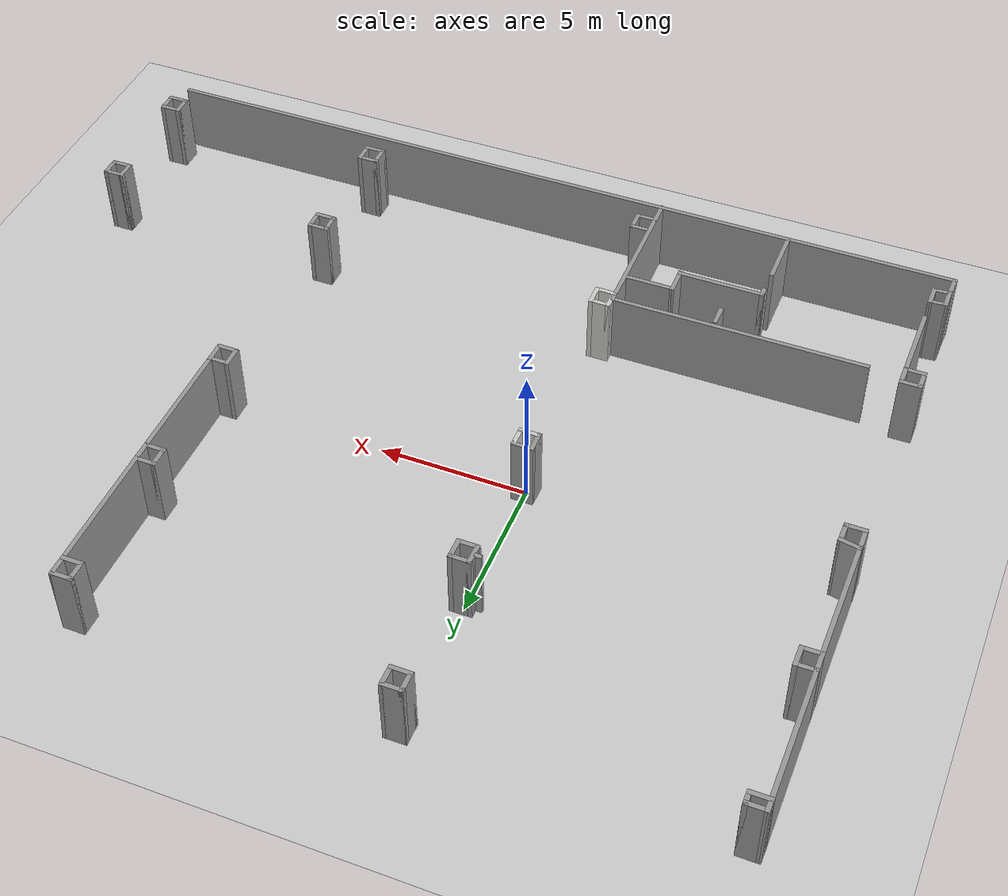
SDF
<sdf version="1.6">
 <world name="default">
  <model name="ground_plane">
   <static>1</static>
   <link name="link">
    <collision name="collision">
     <geometry><plane><normal>0 0 1</normal><size>100 100</size></plane></geometry>
     <surface>
      <contact><collide_bitmask>65535</collide_bitmask></contact>
      <friction><ode><mu>100</mu><mu2>50</mu2></ode></friction>
     </surface>
    </collision>
    <visual name="visual">
     <cast_shadows>0</cast_shadows>
     <geometry><plane><normal>0 0 1</normal><size>100 100</size></plane></geometry>
     <material>
      <script><uri>file://media/materials/scripts/gazebo.material</uri><name>Gazebo/Grey</name></script>
     </material>
    </visual>
   </link>
  </model>
  <model name="Untitled">
   <pose>4.02207 -1.0602 0 0 -0 0</pose>
   <link name="Wall_0">
    <collision name="Wall_0_Collision">
     <geometry><box><size>8.75 0.15 2.5</size></box></geometry>
     <pose>0 0 1.25 0 -0 0</pose>
    </collision>
    <visual name="Wall_0_Visual">
     <pose>0 0 1.25 0 -0 0</pose>
     <geometry><box><size>8.75 0.15 2.5</size></box></geometry>
     <material>
      <script><uri>file://media/materials/scripts/gazebo.material</uri><name>Gazebo/Grey</name></script>
      <ambient>1 1 1 1</ambient>
     </material>
     <meta><layer>0</layer></meta>
    </visual>
    <pose>-8.60497 -5.92583 0 0 -0 0</pose>
   </link>
   <link name="Wall_10">
    <collision name="Wall_10_Collision">
     <geometry><box><size>3 0.15 2.5</size></box></geometry>
     <pose>0 0 1.25 0 -0 0</pose>
    </collision>
    <visual name="Wall_10_Visual">
     <pose>0 0 1.25 0 -0 0</pose>
     <geometry><box><size>3 0.15 2.5</size></box></geometry>
     <material>
      <script><uri>file://media/materials/scripts/gazebo.material</uri><name>Gazebo/Grey</name></script>
      <ambient>1 1 1 1</ambient>
     </material>
     <meta><layer>0</layer></meta>
    </visual>
    <pose>-7.39897 -7.96447 0 0 -0 0</pose>
   </link>
   <link name="Wall_100">
    <collision name="Wall_100_Collision">
     <geometry><box><size>0.75 0.15 2.5</size></box></geometry>
     <pose>0 0 1.25 0 -0 0</pose>
    </collision>
    <visual name="Wall_100_Visual">
     <pose>0 0 1.25 0 -0 0</pose>
     <geometry><box><size>0.75 0.15 2.5</size></box></geometry>
     <material>
      <script><uri>file://media/materials/scripts/gazebo.material</uri><name>Gazebo/Grey</name></script>
      <ambient>1 1 1 1</ambient>
     </material>
     <meta><layer>0</layer></meta>
    </visual>
    <pose>6.05694 1.18506 0 0 -0 -1.5708</pose>
   </link>
   <link name="Wall_101">
    <collision name="Wall_101_Collision">
     <geometry><box><size>0.75 0.15 2.5</size></box></geometry>
     <pose>0 0 1.25 0 -0 0</pose>
    </collision>
    <visual name="Wall_101_Visual">
     <pose>0 0 1.25 0 -0 0</pose>
     <geometry><box><size>0.75 0.15 2.5</size></box></geometry>
     <material>
      <script><uri>file://media/materials/scripts/gazebo.material</uri><name>Gazebo/Grey</name></script>
      <ambient>1 1 1 1</ambient>
     </material>
     <meta><layer>0</layer></meta>
    </visual>
    <pose>6.35695 0.885058 0 0 -0 0</pose>
   </link>
   <link name="Wall_102">
    <collision name="Wall_102_Collision">
     <geometry><box><size>0.75 0.15 2.5</size></box></geometry>
     <pose>0 0 1.25 0 -0 0</pose>
    </collision>
    <visual name="Wall_102_Visual">
     <pose>0 0 1.25 0 -0 0</pose>
     <geometry><box><size>0.75 0.15 2.5</size></box></geometry>
     <material>
      <script><uri>file://media/materials/scripts/gazebo.material</uri><name>Gazebo/Grey</name></script>
      <ambient>1 1 1 1</ambient>
     </material>
     <meta><layer>0</layer></meta>
    </visual>
    <pose>6.65695 1.18506 0 0 -0 1.5708</pose>
   </link>
   <link name="Wall_108">
    <collision name="Wall_108_Collision">
     <geometry><box><size>0.75 0.15 2.5</size></box></geometry>
     <pose>0 0 1.25 0 -0 0</pose>
    </collision>
    <visual name="Wall_108_Visual">
     <pose>0 0 1.25 0 -0 0</pose>
     <geometry><box><size>0.75 0.15 2.5</size></box></geometry>
     <material>
      <script><uri>file://media/materials/scripts/gazebo.material</uri><name>Gazebo/Grey</name></script>
      <ambient>1 1 1 1</ambient>
     </material>
     <meta><layer>0</layer></meta>
    </visual>
    <pose>6.02979 -5.94295 0 0 -0 -1.5708</pose>
   </link>
   <link name="Wall_109">
    <collision name="Wall_109_Collision">
     <geometry><box><size>0.75 0.15 2.5</size></box></geometry>
     <pose>0 0 1.25 0 -0 0</pose>
    </collision>
    <visual name="Wall_109_Visual">
     <pose>0 0 1.25 0 -0 0</pose>
     <geometry><box><size>0.75 0.15 2.5</size></box></geometry>
     <material>
      <script><uri>file://media/materials/scripts/gazebo.material</uri><name>Gazebo/Grey</name></script>
      <ambient>1 1 1 1</ambient>
     </material>
     <meta><layer>0</layer></meta>
    </visual>
    <pose>6.32979 -6.24295 0 0 -0 0</pose>
   </link>
   <link name="Wall_110">
    <collision name="Wall_110_Collision">
     <geometry><box><size>0.75 0.15 2.5</size></box></geometry>
     <pose>0 0 1.25 0 -0 0</pose>
    </collision>
    <visual name="Wall_110_Visual">
     <pose>0 0 1.25 0 -0 0</pose>
     <geometry><box><size>0.75 0.15 2.5</size></box></geometry>
     <material>
      <script><uri>file://media/materials/scripts/gazebo.material</uri><name>Gazebo/Grey</name></script>
      <ambient>1 1 1 1</ambient>
     </material>
     <meta><layer>0</layer></meta>
    </visual>
    <pose>6.62979 -5.94295 0 0 -0 1.5708</pose>
   </link>
   <link name="Wall_111">
    <collision name="Wall_111_Collision">
     <geometry><box><size>0.75 0.15 2.5</size></box></geometry>
     <pose>0 0 1.25 0 -0 0</pose>
    </collision>
    <visual name="Wall_111_Visual">
     <pose>0 0 1.25 0 -0 0</pose>
     <geometry><box><size>0.75 0.15 2.5</size></box></geometry>
     <material>
      <script><uri>file://media/materials/scripts/gazebo.material</uri><name>Gazebo/Grey</name></script>
      <ambient>1 1 1 1</ambient>
     </material>
     <meta><layer>0</layer></meta>
    </visual>
    <pose>6.32979 -5.64295 0 0 -0 3.14159</pose>
   </link>
   <link name="Wall_116">
    <collision name="Wall_116_Collision">
     <geometry><box><size>0.75 0.15 2.5</size></box></geometry>
     <pose>0 0 1.25 0 -0 0</pose>
    </collision>
    <visual name="Wall_116_Visual">
     <pose>0 0 1.25 0 -0 0</pose>
     <geometry><box><size>0.75 0.15 2.5</size></box></geometry>
     <material>
      <script><uri>file://media/materials/scripts/gazebo.material</uri><name>Gazebo/Grey</name></script>
      <ambient>1 1 1 1</ambient>
     </material>
     <meta><layer>0</layer></meta>
    </visual>
    <pose>6.02979 -9.98578 0 0 -0 -1.5708</pose>
   </link>
   <link name="Wall_117">
    <collision name="Wall_117_Collision">
     <geometry><box><size>0.75 0.15 2.5</size></box></geometry>
     <pose>0 0 1.25 0 -0 0</pose>
    </collision>
    <visual name="Wall_117_Visual">
     <pose>0 0 1.25 0 -0 0</pose>
     <geometry><box><size>0.75 0.15 2.5</size></box></geometry>
     <material>
      <script><uri>file://media/materials/scripts/gazebo.material</uri><name>Gazebo/Grey</name></script>
      <ambient>1 1 1 1</ambient>
     </material>
     <meta><layer>0</layer></meta>
    </visual>
    <pose>6.32979 -10.2858 0 0 -0 0</pose>
   </link>
   <link name="Wall_118">
    <collision name="Wall_118_Collision">
     <geometry><box><size>0.75 0.15 2.5</size></box></geometry>
     <pose>0 0 1.25 0 -0 0</pose>
    </collision>
    <visual name="Wall_118_Visual">
     <pose>0 0 1.25 0 -0 0</pose>
     <geometry><box><size>0.75 0.15 2.5</size></box></geometry>
     <material>
      <script><uri>file://media/materials/scripts/gazebo.material</uri><name>Gazebo/Grey</name></script>
      <ambient>1 1 1 1</ambient>
     </material>
     <meta><layer>0</layer></meta>
    </visual>
    <pose>6.62979 -9.98578 0 0 -0 1.5708</pose>
   </link>
   <link name="Wall_119">
    <collision name="Wall_119_Collision">
     <geometry><box><size>0.75 0.15 2.5</size></box></geometry>
     <pose>0 0 1.25 0 -0 0</pose>
    </collision>
    <visual name="Wall_119_Visual">
     <pose>0 0 1.25 0 -0 0</pose>
     <geometry><box><size>0.75 0.15 2.5</size></box></geometry>
     <material>
      <script><uri>file://media/materials/scripts/gazebo.material</uri><name>Gazebo/Grey</name></script>
      <ambient>1 1 1 1</ambient>
     </material>
     <meta><layer>0</layer></meta>
    </visual>
    <pose>6.32979 -9.68578 0 0 -0 3.14159</pose>
   </link>
   <link name="Wall_12">
    <collision name="Wall_12_Collision">
     <geometry><box><size>0.75 0.15 2.5</size></box></geometry>
     <pose>0 0 1.25 0 -0 0</pose>
    </collision>
    <visual name="Wall_12_Visual">
     <pose>0 0 1.25 0 -0 0</pose>
     <geometry><box><size>0.75 0.15 2.5</size></box></geometry>
     <material>
      <script><uri>file://media/materials/scripts/gazebo.material</uri><name>Gazebo/Grey</name></script>
      <ambient>1 1 1 1</ambient>
     </material>
     <meta><layer>0</layer></meta>
    </visual>
    <pose>-7.78656 -6.44086 0 0 -0 1.5708</pose>
   </link>
   <link name="Wall_124">
    <collision name="Wall_124_Collision">
     <geometry><box><size>0.75 0.15 2.5</size></box></geometry>
     <pose>0 0 1.25 0 -0 0</pose>
    </collision>
    <visual name="Wall_124_Visual">
     <pose>0 0 1.25 0 -0 0</pose>
     <geometry><box><size>0.75 0.15 2.5</size></box></geometry>
     <material>
      <script><uri>file://media/materials/scripts/gazebo.material</uri><name>Gazebo/Grey</name></script>
      <ambient>1 1 1 1</ambient>
     </material>
     <meta><layer>0</layer></meta>
    </visual>
    <pose>-4.33544 10.7235 0 0 -0 -1.5708</pose>
   </link>
   <link name="Wall_125">
    <collision name="Wall_125_Collision">
     <geometry><box><size>0.75 0.15 2.5</size></box></geometry>
     <pose>0 0 1.25 0 -0 0</pose>
    </collision>
    <visual name="Wall_125_Visual">
     <pose>0 0 1.25 0 -0 0</pose>
     <geometry><box><size>0.75 0.15 2.5</size></box></geometry>
     <material>
      <script><uri>file://media/materials/scripts/gazebo.material</uri><name>Gazebo/Grey</name></script>
      <ambient>1 1 1 1</ambient>
     </material>
     <meta><layer>0</layer></meta>
    </visual>
    <pose>-4.03544 10.4235 0 0 -0 0</pose>
   </link>
   <link name="Wall_126">
    <collision name="Wall_126_Collision">
     <geometry><box><size>0.75 0.15 2.5</size></box></geometry>
     <pose>0 0 1.25 0 -0 0</pose>
    </collision>
    <visual name="Wall_126_Visual">
     <pose>0 0 1.25 0 -0 0</pose>
     <geometry><box><size>0.75 0.15 2.5</size></box></geometry>
     <material>
      <script><uri>file://media/materials/scripts/gazebo.material</uri><name>Gazebo/Grey</name></script>
      <ambient>1 1 1 1</ambient>
     </material>
     <meta><layer>0</layer></meta>
    </visual>
    <pose>-3.73544 10.7235 0 0 -0 1.5708</pose>
   </link>
   <link name="Wall_127">
    <collision name="Wall_127_Collision">
     <geometry><box><size>0.75 0.15 2.5</size></box></geometry>
     <pose>0 0 1.25 0 -0 0</pose>
    </collision>
    <visual name="Wall_127_Visual">
     <pose>0 0 1.25 0 -0 0</pose>
     <geometry><box><size>0.75 0.15 2.5</size></box></geometry>
     <material>
      <script><uri>file://media/materials/scripts/gazebo.material</uri><name>Gazebo/Grey</name></script>
      <ambient>1 1 1 1</ambient>
     </material>
     <meta><layer>0</layer></meta>
    </visual>
    <pose>-4.03544 11.0235 0 0 -0 3.14159</pose>
   </link>
   <link name="Wall_129">
    <collision name="Wall_129_Collision">
     <geometry><box><size>0.75 0.15 2.5</size></box></geometry>
     <pose>0 0 1.25 0 -0 0</pose>
    </collision>
    <visual name="Wall_129_Visual">
     <pose>0 0 1.25 0 -0 0</pose>
     <geometry><box><size>0.75 0.15 2.5</size></box></geometry>
     <material>
      <script><uri>file://media/materials/scripts/gazebo.material</uri><name>Gazebo/Grey</name></script>
      <ambient>1 1 1 1</ambient>
     </material>
     <meta><layer>0</layer></meta>
    </visual>
    <pose>6.03693 10.6931 0 0 -0 -1.5708</pose>
   </link>
   <link name="Wall_130">
    <collision name="Wall_130_Collision">
     <geometry><box><size>0.75 0.15 2.5</size></box></geometry>
     <pose>0 0 1.25 0 -0 0</pose>
    </collision>
    <visual name="Wall_130_Visual">
     <pose>0 0 1.25 0 -0 0</pose>
     <geometry><box><size>0.75 0.15 2.5</size></box></geometry>
     <material>
      <script><uri>file://media/materials/scripts/gazebo.material</uri><name>Gazebo/Grey</name></script>
      <ambient>1 1 1 1</ambient>
     </material>
     <meta><layer>0</layer></meta>
    </visual>
    <pose>6.33693 10.3931 0 0 -0 0</pose>
   </link>
   <link name="Wall_131">
    <collision name="Wall_131_Collision">
     <geometry><box><size>0.75 0.15 2.5</size></box></geometry>
     <pose>0 0 1.25 0 -0 0</pose>
    </collision>
    <visual name="Wall_131_Visual">
     <pose>0 0 1.25 0 -0 0</pose>
     <geometry><box><size>0.75 0.15 2.5</size></box></geometry>
     <material>
      <script><uri>file://media/materials/scripts/gazebo.material</uri><name>Gazebo/Grey</name></script>
      <ambient>1 1 1 1</ambient>
     </material>
     <meta><layer>0</layer></meta>
    </visual>
    <pose>6.63693 10.6931 0 0 -0 1.5708</pose>
   </link>
   <link name="Wall_132">
    <collision name="Wall_132_Collision">
     <geometry><box><size>0.75 0.15 2.5</size></box></geometry>
     <pose>0 0 1.25 0 -0 0</pose>
    </collision>
    <visual name="Wall_132_Visual">
     <pose>0 0 1.25 0 -0 0</pose>
     <geometry><box><size>0.75 0.15 2.5</size></box></geometry>
     <material>
      <script><uri>file://media/materials/scripts/gazebo.material</uri><name>Gazebo/Grey</name></script>
      <ambient>1 1 1 1</ambient>
     </material>
     <meta><layer>0</layer></meta>
    </visual>
    <pose>6.33693 10.9931 0 0 -0 3.14159</pose>
   </link>
   <link name="Wall_134">
    <collision name="Wall_134_Collision">
     <geometry><box><size>4.35811 0.15 2.5</size></box></geometry>
     <pose>0 0 1.25 0 -0 0</pose>
    </collision>
    <visual name="Wall_134_Visual">
     <pose>0 0 1.25 0 -0 0</pose>
     <geometry><box><size>4.35811 0.15 2.5</size></box></geometry>
     <material>
      <script><uri>file://media/materials/scripts/gazebo.material</uri><name>Gazebo/Grey</name></script>
      <ambient>1 1 1 1</ambient>
     </material>
     <meta><layer>0</layer></meta>
    </visual>
    <pose>6.64694 8.28909 0 0 -0 -1.56604</pose>
   </link>
   <link name="Wall_14">
    <collision name="Wall_14_Collision">
     <geometry><box><size>0.815537 0.15 2.5</size></box></geometry>
     <pose>0 0 1.25 0 -0 0</pose>
    </collision>
    <visual name="Wall_14_Visual">
     <pose>0 0 1.25 0 -0 0</pose>
     <geometry><box><size>0.815537 0.15 2.5</size></box></geometry>
     <material>
      <script><uri>file://media/materials/scripts/gazebo.material</uri><name>Gazebo/Grey</name></script>
      <ambient>1 1 1 1</ambient>
     </material>
     <meta><layer>0</layer></meta>
    </visual>
    <pose>-14.5829 -10.6644 0 0 -0 -1.61078</pose>
   </link>
   <link name="Wall_140">
    <collision name="Wall_140_Collision">
     <geometry><box><size>0.6968 0.15 2.5</size></box></geometry>
     <pose>0 0 1.25 0 -0 0</pose>
    </collision>
    <visual name="Wall_140_Visual">
     <pose>0 0 1.25 0 -0 0</pose>
     <geometry><box><size>0.6968 0.15 2.5</size></box></geometry>
     <material>
      <script><uri>file://media/materials/scripts/gazebo.material</uri><name>Gazebo/Grey</name></script>
      <ambient>1 1 1 1</ambient>
     </material>
     <meta><layer>0</layer></meta>
    </visual>
    <pose>14.0546 -5.90185 0 0 -0 -1.5708</pose>
   </link>
   <link name="Wall_143">
    <collision name="Wall_143_Collision">
     <geometry><box><size>0.75 0.15 2.5</size></box></geometry>
     <pose>0 0 1.25 0 -0 0</pose>
    </collision>
    <visual name="Wall_143_Visual">
     <pose>0 0 1.25 0 -0 0</pose>
     <geometry><box><size>0.75 0.15 2.5</size></box></geometry>
     <material>
      <script><uri>file://media/materials/scripts/gazebo.material</uri><name>Gazebo/Grey</name></script>
      <ambient>1 1 1 1</ambient>
     </material>
     <meta><layer>0</layer></meta>
    </visual>
    <pose>14.3546 -6.17525 0 0 -0 0</pose>
   </link>
   <link name="Wall_144">
    <collision name="Wall_144_Collision">
     <geometry><box><size>0.6968 0.15 2.5</size></box></geometry>
     <pose>0 0 1.25 0 -0 0</pose>
    </collision>
    <visual name="Wall_144_Visual">
     <pose>0 0 1.25 0 -0 0</pose>
     <geometry><box><size>0.6968 0.15 2.5</size></box></geometry>
     <material>
      <script><uri>file://media/materials/scripts/gazebo.material</uri><name>Gazebo/Grey</name></script>
      <ambient>1 1 1 1</ambient>
     </material>
     <meta><layer>0</layer></meta>
    </visual>
    <pose>14.6546 -5.90185 0 0 -0 1.5708</pose>
   </link>
   <link name="Wall_145">
    <collision name="Wall_145_Collision">
     <geometry><box><size>0.75 0.15 2.5</size></box></geometry>
     <pose>0 0 1.25 0 -0 0</pose>
    </collision>
    <visual name="Wall_145_Visual">
     <pose>0 0 1.25 0 -0 0</pose>
     <geometry><box><size>0.75 0.15 2.5</size></box></geometry>
     <material>
      <script><uri>file://media/materials/scripts/gazebo.material</uri><name>Gazebo/Grey</name></script>
      <ambient>1 1 1 1</ambient>
     </material>
     <meta><layer>0</layer></meta>
    </visual>
    <pose>14.3546 -5.62845 0 0 -0 3.14159</pose>
   </link>
   <link name="Wall_154">
    <collision name="Wall_154_Collision">
     <geometry><box><size>0.75 0.15 2.5</size></box></geometry>
     <pose>0 0 1.25 0 -0 0</pose>
    </collision>
    <visual name="Wall_154_Visual">
     <pose>0 0 1.25 0 -0 0</pose>
     <geometry><box><size>0.75 0.15 2.5</size></box></geometry>
     <material>
      <script><uri>file://media/materials/scripts/gazebo.material</uri><name>Gazebo/Grey</name></script>
      <ambient>1 1 1 1</ambient>
     </material>
     <meta><layer>0</layer></meta>
    </visual>
    <pose>14.0691 -10.0298 0 0 -0 -1.5708</pose>
   </link>
   <link name="Wall_155">
    <collision name="Wall_155_Collision">
     <geometry><box><size>0.75 0.15 2.5</size></box></geometry>
     <pose>0 0 1.25 0 -0 0</pose>
    </collision>
    <visual name="Wall_155_Visual">
     <pose>0 0 1.25 0 -0 0</pose>
     <geometry><box><size>0.75 0.15 2.5</size></box></geometry>
     <material>
      <script><uri>file://media/materials/scripts/gazebo.material</uri><name>Gazebo/Grey</name></script>
      <ambient>1 1 1 1</ambient>
     </material>
     <meta><layer>0</layer></meta>
    </visual>
    <pose>14.3691 -10.3298 0 0 -0 0</pose>
   </link>
   <link name="Wall_156">
    <collision name="Wall_156_Collision">
     <geometry><box><size>0.75 0.15 2.5</size></box></geometry>
     <pose>0 0 1.25 0 -0 0</pose>
    </collision>
    <visual name="Wall_156_Visual">
     <pose>0 0 1.25 0 -0 0</pose>
     <geometry><box><size>0.75 0.15 2.5</size></box></geometry>
     <material>
      <script><uri>file://media/materials/scripts/gazebo.material</uri><name>Gazebo/Grey</name></script>
      <ambient>1 1 1 1</ambient>
     </material>
     <meta><layer>0</layer></meta>
    </visual>
    <pose>14.6691 -10.0298 0 0 -0 1.5708</pose>
   </link>
   <link name="Wall_157">
    <collision name="Wall_157_Collision">
     <geometry><box><size>0.75 0.15 2.5</size></box></geometry>
     <pose>0 0 1.25 0 -0 0</pose>
    </collision>
    <visual name="Wall_157_Visual">
     <pose>0 0 1.25 0 -0 0</pose>
     <geometry><box><size>0.75 0.15 2.5</size></box></geometry>
     <material>
      <script><uri>file://media/materials/scripts/gazebo.material</uri><name>Gazebo/Grey</name></script>
      <ambient>1 1 1 1</ambient>
     </material>
     <meta><layer>0</layer></meta>
    </visual>
    <pose>14.3691 -9.72985 0 0 -0 3.14159</pose>
   </link>
   <link name="Wall_16">
    <collision name="Wall_16_Collision">
     <geometry><box><size>2 0.15 2.5</size></box></geometry>
     <pose>0 0 1.25 0 -0 0</pose>
    </collision>
    <visual name="Wall_16_Visual">
     <pose>0 0 1.25 0 -0 0</pose>
     <geometry><box><size>2 0.15 2.5</size></box></geometry>
     <material>
      <script><uri>file://media/materials/scripts/gazebo.material</uri><name>Gazebo/Grey</name></script>
      <ambient>1 1 1 1</ambient>
     </material>
     <meta><layer>0</layer></meta>
    </visual>
    <pose>-8.84658 -9.98672 0 0 -0 -1.5708</pose>
   </link>
   <link name="Wall_18">
    <collision name="Wall_18_Collision">
     <geometry><box><size>0.389402 0.15 2.5</size></box></geometry>
     <pose>0 0 1.25 0 -0 0</pose>
    </collision>
    <visual name="Wall_18_Visual">
     <pose>0 0 1.25 0 -0 0</pose>
     <geometry><box><size>0.389402 0.15 2.5</size></box></geometry>
     <material>
      <script><uri>file://media/materials/scripts/gazebo.material</uri><name>Gazebo/Grey</name></script>
      <ambient>1 1 1 1</ambient>
     </material>
     <meta><layer>0</layer></meta>
    </visual>
    <pose>-8.82397 -8.08417 0 0 -0 1.5708</pose>
   </link>
   <link name="Wall_20">
    <collision name="Wall_20_Collision">
     <geometry><box><size>1 0.15 2.5</size></box></geometry>
     <pose>0 0 1.25 0 -0 0</pose>
    </collision>
    <visual name="Wall_20_Visual">
     <pose>0 0 1.25 0 -0 0</pose>
     <geometry><box><size>1 0.15 2.5</size></box></geometry>
     <material>
      <script><uri>file://media/materials/scripts/gazebo.material</uri><name>Gazebo/Grey</name></script>
      <ambient>1 1 1 1</ambient>
     </material>
     <meta><layer>0</layer></meta>
    </visual>
    <pose>-5.97775 -7.56607 0 0 -0 1.5708</pose>
   </link>
   <link name="Wall_21">
    <collision name="Wall_21_Collision">
     <geometry><box><size>1.75 0.15 2.5</size></box></geometry>
     <pose>0 0 1.25 0 -0 0</pose>
    </collision>
    <visual name="Wall_21_Visual">
     <pose>0 0 1.25 0 -0 0</pose>
     <geometry><box><size>1.75 0.15 2.5</size></box></geometry>
     <material>
      <script><uri>file://media/materials/scripts/gazebo.material</uri><name>Gazebo/Grey</name></script>
      <ambient>1 1 1 1</ambient>
     </material>
     <meta><layer>0</layer></meta>
    </visual>
    <pose>-5.17775 -7.14107 0 0 -0 0</pose>
   </link>
   <link name="Wall_30">
    <collision name="Wall_30_Collision">
     <geometry><box><size>0.75 0.15 2.5</size></box></geometry>
     <pose>0 0 1.25 0 -0 0</pose>
    </collision>
    <visual name="Wall_30_Visual">
     <pose>0 0 1.25 0 -0 0</pose>
     <geometry><box><size>0.75 0.15 2.5</size></box></geometry>
     <material>
      <script><uri>file://media/materials/scripts/gazebo.material</uri><name>Gazebo/Grey</name></script>
      <ambient>1 1 1 1</ambient>
     </material>
     <meta><layer>0</layer></meta>
    </visual>
    <pose>-14.3691 -5.65192 0 0 -0 3.14159</pose>
   </link>
   <link name="Wall_31">
    <collision name="Wall_31_Collision">
     <geometry><box><size>0.75 0.15 2.5</size></box></geometry>
     <pose>0 0 1.25 0 -0 0</pose>
    </collision>
    <visual name="Wall_31_Visual">
     <pose>0 0 1.25 0 -0 0</pose>
     <geometry><box><size>0.75 0.15 2.5</size></box></geometry>
     <material>
      <script><uri>file://media/materials/scripts/gazebo.material</uri><name>Gazebo/Grey</name></script>
      <ambient>1 1 1 1</ambient>
     </material>
     <meta><layer>0</layer></meta>
    </visual>
    <pose>-14.6691 -5.95192 0 0 -0 -1.5708</pose>
   </link>
   <link name="Wall_32">
    <collision name="Wall_32_Collision">
     <geometry><box><size>0.75 0.15 2.5</size></box></geometry>
     <pose>0 0 1.25 0 -0 0</pose>
    </collision>
    <visual name="Wall_32_Visual">
     <pose>0 0 1.25 0 -0 0</pose>
     <geometry><box><size>0.75 0.15 2.5</size></box></geometry>
     <material>
      <script><uri>file://media/materials/scripts/gazebo.material</uri><name>Gazebo/Grey</name></script>
      <ambient>1 1 1 1</ambient>
     </material>
     <meta><layer>0</layer></meta>
    </visual>
    <pose>-14.3691 -6.25192 0 0 -0 0</pose>
   </link>
   <link name="Wall_33">
    <collision name="Wall_33_Collision">
     <geometry><box><size>0.75 0.15 2.5</size></box></geometry>
     <pose>0 0 1.25 0 -0 0</pose>
    </collision>
    <visual name="Wall_33_Visual">
     <pose>0 0 1.25 0 -0 0</pose>
     <geometry><box><size>0.75 0.15 2.5</size></box></geometry>
     <material>
      <script><uri>file://media/materials/scripts/gazebo.material</uri><name>Gazebo/Grey</name></script>
      <ambient>1 1 1 1</ambient>
     </material>
     <meta><layer>0</layer></meta>
    </visual>
    <pose>-14.0691 -5.95192 0 0 -0 1.5708</pose>
   </link>
   <link name="Wall_35">
    <collision name="Wall_35_Collision">
     <geometry><box><size>2.75 0.15 2.5</size></box></geometry>
     <pose>0 0 1.25 0 -0 0</pose>
    </collision>
    <visual name="Wall_35_Visual">
     <pose>0 0 1.25 0 -0 0</pose>
     <geometry><box><size>2.75 0.15 2.5</size></box></geometry>
     <material>
      <script><uri>file://media/materials/scripts/gazebo.material</uri><name>Gazebo/Grey</name></script>
      <ambient>1 1 1 1</ambient>
     </material>
     <meta><layer>0</layer></meta>
    </visual>
    <pose>-14.0691 -7.55192 0 0 -0 -1.5708</pose>
   </link>
   <link name="Wall_37">
    <collision name="Wall_37_Collision">
     <geometry><box><size>0.75 0.15 2.5</size></box></geometry>
     <pose>0 0 1.25 0 -0 0</pose>
    </collision>
    <visual name="Wall_37_Visual">
     <pose>0 0 1.25 0 -0 0</pose>
     <geometry><box><size>0.75 0.15 2.5</size></box></geometry>
     <material>
      <script><uri>file://media/materials/scripts/gazebo.material</uri><name>Gazebo/Grey</name></script>
      <ambient>1 1 1 1</ambient>
     </material>
     <meta><layer>0</layer></meta>
    </visual>
    <pose>-14.0589 -9.99265 0 0 -0 -1.5708</pose>
   </link>
   <link name="Wall_38">
    <collision name="Wall_38_Collision">
     <geometry><box><size>0.662197 0.15 2.5</size></box></geometry>
     <pose>0 0 1.25 0 -0 0</pose>
    </collision>
    <visual name="Wall_38_Visual">
     <pose>0 0 1.25 0 -0 0</pose>
     <geometry><box><size>0.662197 0.15 2.5</size></box></geometry>
     <material>
      <script><uri>file://media/materials/scripts/gazebo.material</uri><name>Gazebo/Grey</name></script>
      <ambient>1 1 1 1</ambient>
     </material>
     <meta><layer>0</layer></meta>
    </visual>
    <pose>-14.3143 -10.3123 0 0 -0 -3.06492</pose>
   </link>
   <link name="Wall_39">
    <collision name="Wall_39_Collision">
     <geometry><box><size>0.75 0.15 2.5</size></box></geometry>
     <pose>0 0 1.25 0 -0 0</pose>
    </collision>
    <visual name="Wall_39_Visual">
     <pose>0 0 1.25 0 -0 0</pose>
     <geometry><box><size>0.75 0.15 2.5</size></box></geometry>
     <material>
      <script><uri>file://media/materials/scripts/gazebo.material</uri><name>Gazebo/Grey</name></script>
      <ambient>1 1 1 1</ambient>
     </material>
     <meta><layer>0</layer></meta>
    </visual>
    <pose>-14.5696 -10.0319 0 0 -0 1.5708</pose>
   </link>
   <link name="Wall_40">
    <collision name="Wall_40_Collision">
     <geometry><box><size>0.662197 0.15 2.5</size></box></geometry>
     <pose>0 0 1.25 0 -0 0</pose>
    </collision>
    <visual name="Wall_40_Visual">
     <pose>0 0 1.25 0 -0 0</pose>
     <geometry><box><size>0.662197 0.15 2.5</size></box></geometry>
     <material>
      <script><uri>file://media/materials/scripts/gazebo.material</uri><name>Gazebo/Grey</name></script>
      <ambient>1 1 1 1</ambient>
     </material>
     <meta><layer>0</layer></meta>
    </visual>
    <pose>-14.3143 -9.71227 0 0 -0 0.076675</pose>
   </link>
   <link name="Wall_42">
    <collision name="Wall_42_Collision">
     <geometry><box><size>0.75 0.15 2.5</size></box></geometry>
     <pose>0 0 1.25 0 -0 0</pose>
    </collision>
    <visual name="Wall_42_Visual">
     <pose>0 0 1.25 0 -0 0</pose>
     <geometry><box><size>0.75 0.15 2.5</size></box></geometry>
     <material>
      <script><uri>file://media/materials/scripts/gazebo.material</uri><name>Gazebo/CeilingTiled</name></script>
      <ambient>1 1 1 1</ambient>
     </material>
     <meta><layer>0</layer></meta>
    </visual>
    <pose>-4.27105 -5.89885 0 0 -0 -1.5708</pose>
   </link>
   <link name="Wall_43">
    <collision name="Wall_43_Collision">
     <geometry><box><size>0.75 0.15 2.5</size></box></geometry>
     <pose>0 0 1.25 0 -0 0</pose>
    </collision>
    <visual name="Wall_43_Visual">
     <pose>0 0 1.25 0 -0 0</pose>
     <geometry><box><size>0.75 0.15 2.5</size></box></geometry>
     <material>
      <script><uri>file://media/materials/scripts/gazebo.material</uri><name>Gazebo/CeilingTiled</name></script>
      <ambient>1 1 1 1</ambient>
     </material>
     <meta><layer>0</layer></meta>
    </visual>
    <pose>-3.97105 -6.19885 0 0 -0 0</pose>
   </link>
   <link name="Wall_44">
    <collision name="Wall_44_Collision">
     <geometry><box><size>0.75 0.15 2.5</size></box></geometry>
     <pose>0 0 1.25 0 -0 0</pose>
    </collision>
    <visual name="Wall_44_Visual">
     <pose>0 0 1.25 0 -0 0</pose>
     <geometry><box><size>0.75 0.15 2.5</size></box></geometry>
     <material>
      <script><uri>file://media/materials/scripts/gazebo.material</uri><name>Gazebo/CeilingTiled</name></script>
      <ambient>1 1 1 1</ambient>
     </material>
     <meta><layer>0</layer></meta>
    </visual>
    <pose>-3.67105 -5.89885 0 0 -0 1.5708</pose>
   </link>
   <link name="Wall_45">
    <collision name="Wall_45_Collision">
     <geometry><box><size>0.75 0.15 2.5</size></box></geometry>
     <pose>0 0 1.25 0 -0 0</pose>
    </collision>
    <visual name="Wall_45_Visual">
     <pose>0 0 1.25 0 -0 0</pose>
     <geometry><box><size>0.75 0.15 2.5</size></box></geometry>
     <material>
      <script><uri>file://media/materials/scripts/gazebo.material</uri><name>Gazebo/CeilingTiled</name></script>
      <ambient>1 1 1 1</ambient>
     </material>
     <meta><layer>0</layer></meta>
    </visual>
    <pose>-3.97105 -5.59885 0 0 -0 3.14159</pose>
   </link>
   <link name="Wall_47">
    <collision name="Wall_47_Collision">
     <geometry><box><size>0.75 0.15 2.5</size></box></geometry>
     <pose>0 0 1.25 0 -0 0</pose>
    </collision>
    <visual name="Wall_47_Visual">
     <pose>0 0 1.25 0 -0 0</pose>
     <geometry><box><size>0.75 0.15 2.5</size></box></geometry>
     <material>
      <script><uri>file://media/materials/scripts/gazebo.material</uri><name>Gazebo/Grey</name></script>
      <ambient>1 1 1 1</ambient>
     </material>
     <meta><layer>0</layer></meta>
    </visual>
    <pose>-3.9856 -9.69325 0 0 -0 0</pose>
   </link>
   <link name="Wall_48">
    <collision name="Wall_48_Collision">
     <geometry><box><size>0.75 0.15 2.5</size></box></geometry>
     <pose>0 0 1.25 0 -0 0</pose>
    </collision>
    <visual name="Wall_48_Visual">
     <pose>0 0 1.25 0 -0 0</pose>
     <geometry><box><size>0.75 0.15 2.5</size></box></geometry>
     <material>
      <script><uri>file://media/materials/scripts/gazebo.material</uri><name>Gazebo/Grey</name></script>
      <ambient>1 1 1 1</ambient>
     </material>
     <meta><layer>0</layer></meta>
    </visual>
    <pose>-3.6856 -9.99325 0 0 -0 -1.5708</pose>
   </link>
   <link name="Wall_49">
    <collision name="Wall_49_Collision">
     <geometry><box><size>0.75 0.15 2.5</size></box></geometry>
     <pose>0 0 1.25 0 -0 0</pose>
    </collision>
    <visual name="Wall_49_Visual">
     <pose>0 0 1.25 0 -0 0</pose>
     <geometry><box><size>0.75 0.15 2.5</size></box></geometry>
     <material>
      <script><uri>file://media/materials/scripts/gazebo.material</uri><name>Gazebo/Grey</name></script>
      <ambient>1 1 1 1</ambient>
     </material>
     <meta><layer>0</layer></meta>
    </visual>
    <pose>-3.9856 -10.2933 0 0 -0 3.14159</pose>
   </link>
   <link name="Wall_51">
    <collision name="Wall_51_Collision">
     <geometry><box><size>0.75 0.15 2.5</size></box></geometry>
     <pose>0 0 1.25 0 -0 0</pose>
    </collision>
    <visual name="Wall_51_Visual">
     <pose>0 0 1.25 0 -0 0</pose>
     <geometry><box><size>0.75 0.15 2.5</size></box></geometry>
     <material>
      <script><uri>file://media/materials/scripts/gazebo.material</uri><name>Gazebo/Grey</name></script>
      <ambient>1 1 1 1</ambient>
     </material>
     <meta><layer>0</layer></meta>
    </visual>
    <pose>-14.2804 0.814265 0 0 -0 0</pose>
   </link>
   <link name="Wall_52">
    <collision name="Wall_52_Collision">
     <geometry><box><size>0.75 0.15 2.5</size></box></geometry>
     <pose>0 0 1.25 0 -0 0</pose>
    </collision>
    <visual name="Wall_52_Visual">
     <pose>0 0 1.25 0 -0 0</pose>
     <geometry><box><size>0.75 0.15 2.5</size></box></geometry>
     <material>
      <script><uri>file://media/materials/scripts/gazebo.material</uri><name>Gazebo/Grey</name></script>
      <ambient>1 1 1 1</ambient>
     </material>
     <meta><layer>0</layer></meta>
    </visual>
    <pose>-13.9804 1.11427 0 0 -0 1.5708</pose>
   </link>
   <link name="Wall_53">
    <collision name="Wall_53_Collision">
     <geometry><box><size>0.7608 0.15 2.5</size></box></geometry>
     <pose>0 0 1.25 0 -0 0</pose>
    </collision>
    <visual name="Wall_53_Visual">
     <pose>0 0 1.25 0 -0 0</pose>
     <geometry><box><size>0.7608 0.15 2.5</size></box></geometry>
     <material>
      <script><uri>file://media/materials/scripts/gazebo.material</uri><name>Gazebo/Grey</name></script>
      <ambient>1 1 1 1</ambient>
     </material>
     <meta><layer>0</layer></meta>
    </visual>
    <pose>-14.2804 1.47144 0 0 -0 2.95327</pose>
   </link>
   <link name="Wall_54">
    <collision name="Wall_54_Collision">
     <geometry><box><size>0.864351 0.15 2.5</size></box></geometry>
     <pose>0 0 1.25 0 -0 0</pose>
    </collision>
    <visual name="Wall_54_Visual">
     <pose>0 0 1.25 0 -0 0</pose>
     <geometry><box><size>0.864351 0.15 2.5</size></box></geometry>
     <material>
      <script><uri>file://media/materials/scripts/gazebo.material</uri><name>Gazebo/Grey</name></script>
      <ambient>1 1 1 1</ambient>
     </material>
     <meta><layer>0</layer></meta>
    </visual>
    <pose>-14.5804 1.17144 0 0 -0 -1.5708</pose>
   </link>
   <link name="Wall_56">
    <collision name="Wall_56_Collision">
     <geometry><box><size>4.25 0.15 2.5</size></box></geometry>
     <pose>0 0 1.25 0 -0 0</pose>
    </collision>
    <visual name="Wall_56_Visual">
     <pose>0 0 1.25 0 -0 0</pose>
     <geometry><box><size>4.25 0.15 2.5</size></box></geometry>
     <material>
      <script><uri>file://media/materials/scripts/gazebo.material</uri><name>Gazebo/Grey</name></script>
      <ambient>1 1 1 1</ambient>
     </material>
     <meta><layer>0</layer></meta>
    </visual>
    <pose>-14.5804 3.56718 0 0 -0 1.5708</pose>
   </link>
   <link name="Wall_6">
    <collision name="Wall_6_Collision">
     <geometry><box><size>29 0.15 2.5</size></box></geometry>
     <pose>0 0 1.25 0 -0 0</pose>
    </collision>
    <visual name="Wall_6_Visual">
     <pose>0 0 1.25 0 -0 0</pose>
     <geometry><box><size>29 0.15 2.5</size></box></geometry>
     <material>
      <script><uri>file://media/materials/scripts/gazebo.material</uri><name>Gazebo/Grey</name></script>
      <ambient>1 1 1 1</ambient>
     </material>
     <meta><layer>0</layer></meta>
    </visual>
    <pose>-0.171213 -10.9969 0 0 -0 0</pose>
   </link>
   <link name="Wall_60">
    <collision name="Wall_60_Collision">
     <geometry><box><size>0.75 0.15 2.5</size></box></geometry>
     <pose>0 0 1.25 0 -0 0</pose>
    </collision>
    <visual name="Wall_60_Visual">
     <pose>0 0 1.25 0 -0 0</pose>
     <geometry><box><size>0.75 0.15 2.5</size></box></geometry>
     <material>
      <script><uri>file://media/materials/scripts/gazebo.material</uri><name>Gazebo/Grey</name></script>
      <ambient>1 1 1 1</ambient>
     </material>
     <meta><layer>0</layer></meta>
    </visual>
    <pose>-14.2804 5.61718 0 0 -0 0</pose>
   </link>
   <link name="Wall_61">
    <collision name="Wall_61_Collision">
     <geometry><box><size>0.75 0.15 2.5</size></box></geometry>
     <pose>0 0 1.25 0 -0 0</pose>
    </collision>
    <visual name="Wall_61_Visual">
     <pose>0 0 1.25 0 -0 0</pose>
     <geometry><box><size>0.75 0.15 2.5</size></box></geometry>
     <material>
      <script><uri>file://media/materials/scripts/gazebo.material</uri><name>Gazebo/Grey</name></script>
      <ambient>1 1 1 1</ambient>
     </material>
     <meta><layer>0</layer></meta>
    </visual>
    <pose>-13.9804 5.91718 0 0 -0 1.5708</pose>
   </link>
   <link name="Wall_62">
    <collision name="Wall_62_Collision">
     <geometry><box><size>0.75 0.15 2.5</size></box></geometry>
     <pose>0 0 1.25 0 -0 0</pose>
    </collision>
    <visual name="Wall_62_Visual">
     <pose>0 0 1.25 0 -0 0</pose>
     <geometry><box><size>0.75 0.15 2.5</size></box></geometry>
     <material>
      <script><uri>file://media/materials/scripts/gazebo.material</uri><name>Gazebo/Grey</name></script>
      <ambient>1 1 1 1</ambient>
     </material>
     <meta><layer>0</layer></meta>
    </visual>
    <pose>-14.2804 6.21718 0 0 -0 3.14159</pose>
   </link>
   <link name="Wall_63">
    <collision name="Wall_63_Collision">
     <geometry><box><size>0.75 0.15 2.5</size></box></geometry>
     <pose>0 0 1.25 0 -0 0</pose>
    </collision>
    <visual name="Wall_63_Visual">
     <pose>0 0 1.25 0 -0 0</pose>
     <geometry><box><size>0.75 0.15 2.5</size></box></geometry>
     <material>
      <script><uri>file://media/materials/scripts/gazebo.material</uri><name>Gazebo/Grey</name></script>
      <ambient>1 1 1 1</ambient>
     </material>
     <meta><layer>0</layer></meta>
    </visual>
    <pose>-14.5804 5.91718 0 0 -0 -1.5708</pose>
   </link>
   <link name="Wall_65">
    <collision name="Wall_65_Collision">
     <geometry><box><size>4.89778 0.15 2.5</size></box></geometry>
     <pose>0 0 1.25 0 -0 0</pose>
    </collision>
    <visual name="Wall_65_Visual">
     <pose>0 0 1.25 0 -0 0</pose>
     <geometry><box><size>4.89778 0.15 2.5</size></box></geometry>
     <material>
      <script><uri>file://media/materials/scripts/gazebo.material</uri><name>Gazebo/Grey</name></script>
      <ambient>1 1 1 1</ambient>
     </material>
     <meta><layer>0</layer></meta>
    </visual>
    <pose>-14.5886 8.59106 0 0 -0 -1.56735</pose>
   </link>
   <link name="Wall_69">
    <collision name="Wall_69_Collision">
     <geometry><box><size>0.75 0.15 2.5</size></box></geometry>
     <pose>0 0 1.25 0 -0 0</pose>
    </collision>
    <visual name="Wall_69_Visual">
     <pose>0 0 1.25 0 -0 0</pose>
     <geometry><box><size>0.75 0.15 2.5</size></box></geometry>
     <material>
      <script><uri>file://media/materials/scripts/gazebo.material</uri><name>Gazebo/Grey</name></script>
      <ambient>1 1 1 1</ambient>
     </material>
     <meta><layer>0</layer></meta>
    </visual>
    <pose>-14.2968 10.9649 0 0 -0 0</pose>
   </link>
   <link name="Wall_72">
    <collision name="Wall_72_Collision">
     <geometry><box><size>0.5 0.15 2.5</size></box></geometry>
     <pose>0 0 1.25 0 -0 0</pose>
    </collision>
    <visual name="Wall_72_Visual">
     <pose>0 0 1.25 0 -0 0</pose>
     <geometry><box><size>0.5 0.15 2.5</size></box></geometry>
     <material>
      <script><uri>file://media/materials/scripts/gazebo.material</uri><name>Gazebo/Grey</name></script>
      <ambient>1 1 1 1</ambient>
     </material>
     <meta><layer>0</layer></meta>
    </visual>
    <pose>-13.9968 10.7899 0 0 -0 -1.5708</pose>
   </link>
   <link name="Wall_73">
    <collision name="Wall_73_Collision">
     <geometry><box><size>0.75 0.15 2.5</size></box></geometry>
     <pose>0 0 1.25 0 -0 0</pose>
    </collision>
    <visual name="Wall_73_Visual">
     <pose>0 0 1.25 0 -0 0</pose>
     <geometry><box><size>0.75 0.15 2.5</size></box></geometry>
     <material>
      <script><uri>file://media/materials/scripts/gazebo.material</uri><name>Gazebo/Grey</name></script>
      <ambient>1 1 1 1</ambient>
     </material>
     <meta><layer>0</layer></meta>
    </visual>
    <pose>-14.2968 10.6149 0 0 -0 3.14159</pose>
   </link>
   <link name="Wall_78">
    <collision name="Wall_78_Collision">
     <geometry><box><size>0.25 0.15 2.5</size></box></geometry>
     <pose>0 0 1.25 0 -0 0</pose>
    </collision>
    <visual name="Wall_78_Visual">
     <pose>0 0 1.25 0 -0 0</pose>
     <geometry><box><size>0.25 0.15 2.5</size></box></geometry>
     <material>
      <script><uri>file://media/materials/scripts/gazebo.material</uri><name>Gazebo/Grey</name></script>
      <ambient>1 1 1 1</ambient>
     </material>
     <meta><layer>0</layer></meta>
    </visual>
    <pose>-4.43199 5.90069 0 0 -0 0</pose>
   </link>
   <link name="Wall_8">
    <collision name="Wall_8_Collision">
     <geometry><box><size>5.24766 0.15 2.5</size></box></geometry>
     <pose>0 0 1.25 0 -0 0</pose>
    </collision>
    <visual name="Wall_8_Visual">
     <pose>0 0 1.25 0 -0 0</pose>
     <geometry><box><size>5.24766 0.15 2.5</size></box></geometry>
     <material>
      <script><uri>file://media/materials/scripts/gazebo.material</uri><name>Gazebo/Grey</name></script>
      <ambient>1 1 1 1</ambient>
     </material>
     <meta><layer>0</layer></meta>
    </visual>
    <pose>-4.30345 -8.47466 0 0 -0 1.57139</pose>
   </link>
   <link name="Wall_80">
    <collision name="Wall_80_Collision">
     <geometry><box><size>0.75 0.15 2.5</size></box></geometry>
     <pose>0 0 1.25 0 -0 0</pose>
    </collision>
    <visual name="Wall_80_Visual">
     <pose>0 0 1.25 0 -0 0</pose>
     <geometry><box><size>0.75 0.15 2.5</size></box></geometry>
     <material>
      <script><uri>file://media/materials/scripts/gazebo.material</uri><name>Gazebo/Grey</name></script>
      <ambient>1 1 1 1</ambient>
     </material>
     <meta><layer>0</layer></meta>
    </visual>
    <pose>-4.285 5.88506 0 0 -0 -1.5708</pose>
   </link>
   <link name="Wall_81">
    <collision name="Wall_81_Collision">
     <geometry><box><size>0.75 0.15 2.5</size></box></geometry>
     <pose>0 0 1.25 0 -0 0</pose>
    </collision>
    <visual name="Wall_81_Visual">
     <pose>0 0 1.25 0 -0 0</pose>
     <geometry><box><size>0.75 0.15 2.5</size></box></geometry>
     <material>
      <script><uri>file://media/materials/scripts/gazebo.material</uri><name>Gazebo/Grey</name></script>
      <ambient>1 1 1 1</ambient>
     </material>
     <meta><layer>0</layer></meta>
    </visual>
    <pose>-3.98501 5.58506 0 0 -0 0</pose>
   </link>
   <link name="Wall_82">
    <collision name="Wall_82_Collision">
     <geometry><box><size>0.75 0.15 2.5</size></box></geometry>
     <pose>0 0 1.25 0 -0 0</pose>
    </collision>
    <visual name="Wall_82_Visual">
     <pose>0 0 1.25 0 -0 0</pose>
     <geometry><box><size>0.75 0.15 2.5</size></box></geometry>
     <material>
      <script><uri>file://media/materials/scripts/gazebo.material</uri><name>Gazebo/Grey</name></script>
      <ambient>1 1 1 1</ambient>
     </material>
     <meta><layer>0</layer></meta>
    </visual>
    <pose>-3.685 5.88506 0 0 -0 1.5708</pose>
   </link>
   <link name="Wall_83">
    <collision name="Wall_83_Collision">
     <geometry><box><size>0.75 0.15 2.5</size></box></geometry>
     <pose>0 0 1.25 0 -0 0</pose>
    </collision>
    <visual name="Wall_83_Visual">
     <pose>0 0 1.25 0 -0 0</pose>
     <geometry><box><size>0.75 0.15 2.5</size></box></geometry>
     <material>
      <script><uri>file://media/materials/scripts/gazebo.material</uri><name>Gazebo/Grey</name></script>
      <ambient>1 1 1 1</ambient>
     </material>
     <meta><layer>0</layer></meta>
    </visual>
    <pose>-3.98501 6.18506 0 0 -0 3.14159</pose>
   </link>
   <link name="Wall_85">
    <collision name="Wall_85_Collision">
     <geometry><box><size>0.75 0.15 2.5</size></box></geometry>
     <pose>0 0 1.25 0 -0 0</pose>
    </collision>
    <visual name="Wall_85_Visual">
     <pose>0 0 1.25 0 -0 0</pose>
     <geometry><box><size>0.75 0.15 2.5</size></box></geometry>
     <material>
      <script><uri>file://media/materials/scripts/gazebo.material</uri><name>Gazebo/Grey</name></script>
      <ambient>1 1 1 1</ambient>
     </material>
     <meta><layer>0</layer></meta>
    </visual>
    <pose>-4.31542 1.06388 0 0 -0 -1.5708</pose>
   </link>
   <link name="Wall_86">
    <collision name="Wall_86_Collision">
     <geometry><box><size>0.75 0.15 2.5</size></box></geometry>
     <pose>0 0 1.25 0 -0 0</pose>
    </collision>
    <visual name="Wall_86_Visual">
     <pose>0 0 1.25 0 -0 0</pose>
     <geometry><box><size>0.75 0.15 2.5</size></box></geometry>
     <material>
      <script><uri>file://media/materials/scripts/gazebo.material</uri><name>Gazebo/CeilingTiled</name></script>
      <ambient>1 1 1 1</ambient>
     </material>
     <meta><layer>0</layer></meta>
    </visual>
    <pose>-4.01542 0.763885 0 0 -0 0</pose>
   </link>
   <link name="Wall_87">
    <collision name="Wall_87_Collision">
     <geometry><box><size>0.75 0.15 2.5</size></box></geometry>
     <pose>0 0 1.25 0 -0 0</pose>
    </collision>
    <visual name="Wall_87_Visual">
     <pose>0 0 1.25 0 -0 0</pose>
     <geometry><box><size>0.75 0.15 2.5</size></box></geometry>
     <material>
      <script><uri>file://media/materials/scripts/gazebo.material</uri><name>Gazebo/CeilingTiled</name></script>
      <ambient>1 1 1 1</ambient>
     </material>
     <meta><layer>0</layer></meta>
    </visual>
    <pose>-3.71542 1.06388 0 0 -0 1.5708</pose>
   </link>
   <link name="Wall_88">
    <collision name="Wall_88_Collision">
     <geometry><box><size>0.75 0.15 2.5</size></box></geometry>
     <pose>0 0 1.25 0 -0 0</pose>
    </collision>
    <visual name="Wall_88_Visual">
     <pose>0 0 1.25 0 -0 0</pose>
     <geometry><box><size>0.75 0.15 2.5</size></box></geometry>
     <material>
      <script><uri>file://media/materials/scripts/gazebo.material</uri><name>Gazebo/Grey</name></script>
      <ambient>1 1 1 1</ambient>
     </material>
     <meta><layer>0</layer></meta>
    </visual>
    <pose>-4.01542 1.36389 0 0 -0 3.14159</pose>
   </link>
   <link name="Wall_92">
    <collision name="Wall_92_Collision">
     <geometry><box><size>0.75 0.15 2.5</size></box></geometry>
     <pose>0 0 1.25 0 -0 0</pose>
    </collision>
    <visual name="Wall_92_Visual">
     <pose>0 0 1.25 0 -0 0</pose>
     <geometry><box><size>0.75 0.15 2.5</size></box></geometry>
     <material>
      <script><uri>file://media/materials/scripts/gazebo.material</uri><name>Gazebo/Grey</name></script>
      <ambient>1 1 1 1</ambient>
     </material>
     <meta><layer>0</layer></meta>
    </visual>
    <pose>6.05694 5.88506 0 0 -0 -1.5708</pose>
   </link>
   <link name="Wall_93">
    <collision name="Wall_93_Collision">
     <geometry><box><size>0.75 0.15 2.5</size></box></geometry>
     <pose>0 0 1.25 0 -0 0</pose>
    </collision>
    <visual name="Wall_93_Visual">
     <pose>0 0 1.25 0 -0 0</pose>
     <geometry><box><size>0.75 0.15 2.5</size></box></geometry>
     <material>
      <script><uri>file://media/materials/scripts/gazebo.material</uri><name>Gazebo/Grey</name></script>
      <ambient>1 1 1 1</ambient>
     </material>
     <meta><layer>0</layer></meta>
    </visual>
    <pose>6.35695 5.58506 0 0 -0 0</pose>
   </link>
   <link name="Wall_94">
    <collision name="Wall_94_Collision">
     <geometry><box><size>0.75 0.15 2.5</size></box></geometry>
     <pose>0 0 1.25 0 -0 0</pose>
    </collision>
    <visual name="Wall_94_Visual">
     <pose>0 0 1.25 0 -0 0</pose>
     <geometry><box><size>0.75 0.15 2.5</size></box></geometry>
     <material>
      <script><uri>file://media/materials/scripts/gazebo.material</uri><name>Gazebo/Grey</name></script>
      <ambient>1 1 1 1</ambient>
     </material>
     <meta><layer>0</layer></meta>
    </visual>
    <pose>6.65695 5.88506 0 0 -0 1.5708</pose>
   </link>
   <link name="Wall_95">
    <collision name="Wall_95_Collision">
     <geometry><box><size>0.75 0.15 2.5</size></box></geometry>
     <pose>0 0 1.25 0 -0 0</pose>
    </collision>
    <visual name="Wall_95_Visual">
     <pose>0 0 1.25 0 -0 0</pose>
     <geometry><box><size>0.75 0.15 2.5</size></box></geometry>
     <material>
      <script><uri>file://media/materials/scripts/gazebo.material</uri><name>Gazebo/Grey</name></script>
      <ambient>1 1 1 1</ambient>
     </material>
     <meta><layer>0</layer></meta>
    </visual>
    <pose>6.35695 6.18506 0 0 -0 3.14159</pose>
   </link>
   <link name="Wall_97">
    <collision name="Wall_97_Collision">
     <geometry><box><size>4.25 0.15 2.5</size></box></geometry>
     <pose>0 0 1.25 0 -0 0</pose>
    </collision>
    <visual name="Wall_97_Visual">
     <pose>0 0 1.25 0 -0 0</pose>
     <geometry><box><size>4.25 0.15 2.5</size></box></geometry>
     <material>
      <script><uri>file://media/materials/scripts/gazebo.material</uri><name>Gazebo/Grey</name></script>
      <ambient>1 1 1 1</ambient>
     </material>
     <meta><layer>0</layer></meta>
    </visual>
    <pose>6.65695 3.53506 0 0 -0 -1.5708</pose>
   </link>
   <link name="Wall_99">
    <collision name="Wall_99_Collision">
     <geometry><box><size>0.75 0.15 2.5</size></box></geometry>
     <pose>0 0 1.25 0 -0 0</pose>
    </collision>
    <visual name="Wall_99_Visual">
     <pose>0 0 1.25 0 -0 0</pose>
     <geometry><box><size>0.75 0.15 2.5</size></box></geometry>
     <material>
      <script><uri>file://media/materials/scripts/gazebo.material</uri><name>Gazebo/Grey</name></script>
      <ambient>1 1 1 1</ambient>
     </material>
     <meta><layer>0</layer></meta>
    </visual>
    <pose>6.35695 1.48506 0 0 -0 3.14159</pose>
   </link>
   <static>1</static>
  </model>
 </world>
</sdf>
